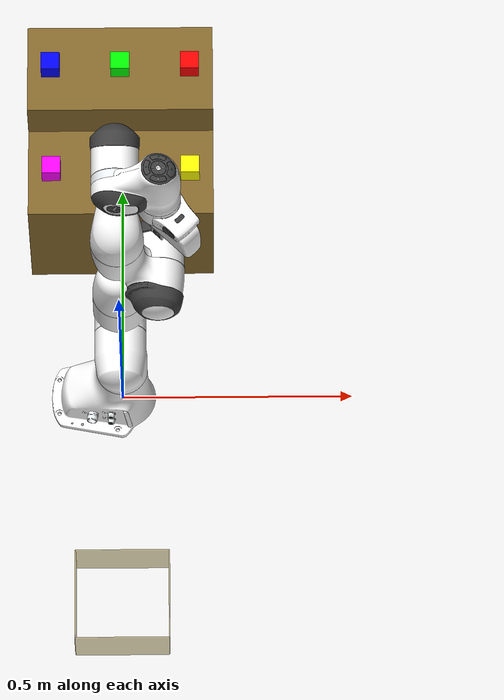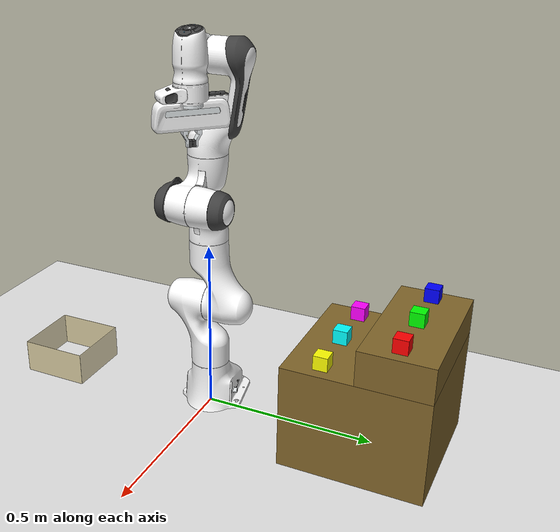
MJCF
<?xml version="1.0"?>
<mujoco model="panda scene">
    <include file="franka_emika_panda/panda.xml"/>

    <statistic center="0.3 0 0.4" extent="1.5"/>

    <option cone="elliptic" impratio="10" noslip_iterations="20" timestep="0.001" integrator="implicitfast">
        <flag multiccd="enable"/>
    </option>

    <visual>
        <headlight diffuse="0 0 0" ambient="1 1 1"/>
        <rgba fog="1.0 1.0 1.0 1.0"/>
        <global azimuth="120" elevation="-20"/>
    </visual>

    <default>
        <geom friction="0.8 0.1 0.1" solimp="0.95 0.99 0.0001" solref="0.005 1"/>
        <default class="cube">
            <geom size="0.02 0.02 0.02" type="box" mass="0.01"/>
        </default>
        <default class="wall">
            <geom type="box" material="wall"/>
        </default>
    </default>

    <asset>
        <material name="groundplane" rgba="0.9 0.9 0.9 1"/>
        <material name="shelf" rgba="0.51 0.4 0.17 1"/>
        <material name="wall" rgba="0.74 0.66 0.39 0.6"/>
    </asset>

    <worldbody>
        <light pos="0 0 3" diffuse="1 1 1" castshadow="false" directional="true" intensity="2"/>
        <light pos="2 -3 3" dir="-2 3 -3" diffuse="1 1 1" directional="false" intensity="30"/>
        <geom name="floor" size="5 5 0.1" type="plane" material="groundplane"/>

        <!-- The shelf -->
        <body name="shelf" pos="0.0 0.5 0.0">
            <body pos="0 0.0 0.15">
                <geom size="0.2 0.2 0.15" type="box" material="shelf"/>
            </body>
            <body pos="0 0.1 0.35">
                <geom size="0.2 0.1 0.05" type="box" material="shelf"/>
            </body>
        </body>

        <!-- A box to put the cubes in -->
        <body name="box" pos="0.0 -0.5 0.0">
            <body pos="0.1 0.0 0.05">
                <geom size="0.001 0.1 0.05" class="wall"/>
            </body>
            <body pos="-0.1 0.0 0.05">
                <geom size="0.001 0.1 0.05" class="wall"/>
            </body>
            <body pos="0.0 0.1 0.05">
                <geom size="0.1 0.001 0.05" class="wall"/>
            </body>
            <body pos="0.0 -0.1 0.05">
                <geom size="0.1 0.001 0.05" class="wall"/>
            </body>
        </body>

        <!-- The cubes that can be picked, placed on the shelf -->
        <body name="redcube" pos="0.15 0.6 0.42">
            <freejoint/>
            <geom class="cube" rgba="1 0 0 1"/>
        </body>

        <body name="greencube" pos="0 0.6 0.42">
            <freejoint/>
            <geom class="cube" rgba="0 1 0 1"/>
        </body>

        <body name="bluecube" pos="-0.15 0.6 0.42">
            <freejoint/>
            <geom class="cube" rgba="0 0 1 1"/>
        </body>

        <body name="yellowcube" pos="0.15 0.4 0.32">
            <freejoint/>
            <geom class="cube" rgba="1 1 0 1"/>
        </body>

        <body name="cyancube" pos="0 0.4 0.32">
            <freejoint/>
            <geom class="cube" rgba="0 1 1 1"/>
        </body>

        <body name="pinkcube" pos="-0.15 0.4 0.32">
            <freejoint/>
            <geom class="cube" rgba="1 0 1 1"/>
        </body>

    </worldbody>
</mujoco>

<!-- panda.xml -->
<mujoco model="panda">
  <compiler angle="radian" meshdir="franka_emika_panda/assets" autolimits="true"/>

  <option integrator="implicit"/>

  <default>
    <default class="panda">
      <material specular="0.5" shininess="0.25"/>
      <joint armature="0.1" damping="1" axis="0 0 1" range="-2.8973 2.8973"/>
      <general dyntype="none" biastype="affine" ctrlrange="-2.8973 2.8973" forcerange="-87 87"/>
      <default class="finger">
        <joint axis="0 1 0" type="slide" range="0 0.04"/>
      </default>

      <default class="visual">
        <geom type="mesh" contype="0" conaffinity="0" group="2"/>
      </default>
      <default class="collision">
        <geom type="mesh" group="3"/>
        <default class="fingertip_pad_collision_1">
          <geom type="box" size="0.0085 0.004 0.0085" pos="0 0.0055 0.0445" priority="1" friction="10 10 10" solimp="0.99 0.99 0.001" solref="0.004 1"/>
        </default>
        <default class="fingertip_pad_collision_2">
          <geom type="box" size="0.003 0.002 0.003" pos="0.0055 0.002 0.05" priority="1" friction="10 10 10" solimp="0.99 0.99 0.001" solref="0.004 1"/>
        </default>
        <default class="fingertip_pad_collision_3">
          <geom type="box" size="0.003 0.002 0.003" pos="-0.0055 0.002 0.05" priority="1" friction="10 10 10" solimp="0.99 0.99 0.001" solref="0.004 1"/>
        </default>
        <default class="fingertip_pad_collision_4">
          <geom type="box" size="0.003 0.002 0.0035" pos="0.0055 0.002 0.0395" priority="1" friction="10 10 10" solimp="0.99 0.99 0.001" solref="0.004 1"/>
        </default>
        <default class="fingertip_pad_collision_5">
          <geom type="box" size="0.003 0.002 0.0035" pos="-0.0055 0.002 0.0395" priority="1" friction="10 10 10" solimp="0.99 0.99 0.001" solref="0.004 1"/>
        </default>
      </default>
    </default>
  </default>

  <asset>
    <material class="panda" name="white" rgba="1 1 1 1"/>
    <material class="panda" name="off_white" rgba="0.901961 0.921569 0.929412 1"/>
    <material class="panda" name="black" rgba="0.25 0.25 0.25 1"/>
    <material class="panda" name="green" rgba="0 1 0 1"/>
    <material class="panda" name="light_blue" rgba="0.039216 0.541176 0.780392 1"/>

    <!-- Collision meshes -->
    <mesh name="link0_c" file="link0.stl"/>
    <mesh name="link1_c" file="link1.stl"/>
    <mesh name="link2_c" file="link2.stl"/>
    <mesh name="link3_c" file="link3.stl"/>
    <mesh name="link4_c" file="link4.stl"/>
    <mesh name="link5_c0" file="link5_collision_0.obj"/>
    <mesh name="link5_c1" file="link5_collision_1.obj"/>
    <mesh name="link5_c2" file="link5_collision_2.obj"/>
    <mesh name="link6_c" file="link6.stl"/>
    <mesh name="link7_c" file="link7.stl"/>
    <mesh name="hand_c" file="hand.stl"/>

    <!-- Visual meshes -->
    <mesh file="link0_0.obj"/>
    <mesh file="link0_1.obj"/>
    <mesh file="link0_2.obj"/>
    <mesh file="link0_3.obj"/>
    <mesh file="link0_4.obj"/>
    <mesh file="link0_5.obj"/>
    <mesh file="link0_7.obj"/>
    <mesh file="link0_8.obj"/>
    <mesh file="link0_9.obj"/>
    <mesh file="link0_10.obj"/>
    <mesh file="link0_11.obj"/>
    <mesh file="link1.obj"/>
    <mesh file="link2.obj"/>
    <mesh file="link3_0.obj"/>
    <mesh file="link3_1.obj"/>
    <mesh file="link3_2.obj"/>
    <mesh file="link3_3.obj"/>
    <mesh file="link4_0.obj"/>
    <mesh file="link4_1.obj"/>
    <mesh file="link4_2.obj"/>
    <mesh file="link4_3.obj"/>
    <mesh file="link5_0.obj"/>
    <mesh file="link5_1.obj"/>
    <mesh file="link5_2.obj"/>
    <mesh file="link6_0.obj"/>
    <mesh file="link6_1.obj"/>
    <mesh file="link6_2.obj"/>
    <mesh file="link6_3.obj"/>
    <mesh file="link6_4.obj"/>
    <mesh file="link6_5.obj"/>
    <mesh file="link6_6.obj"/>
    <mesh file="link6_7.obj"/>
    <mesh file="link6_8.obj"/>
    <mesh file="link6_9.obj"/>
    <mesh file="link6_10.obj"/>
    <mesh file="link6_11.obj"/>
    <mesh file="link6_12.obj"/>
    <mesh file="link6_13.obj"/>
    <mesh file="link6_14.obj"/>
    <mesh file="link6_15.obj"/>
    <mesh file="link6_16.obj"/>
    <mesh file="link7_0.obj"/>
    <mesh file="link7_1.obj"/>
    <mesh file="link7_2.obj"/>
    <mesh file="link7_3.obj"/>
    <mesh file="link7_4.obj"/>
    <mesh file="link7_5.obj"/>
    <mesh file="link7_6.obj"/>
    <mesh file="link7_7.obj"/>
    <mesh file="hand_0.obj"/>
    <mesh file="hand_1.obj"/>
    <mesh file="hand_2.obj"/>
    <mesh file="hand_3.obj"/>
    <mesh file="hand_4.obj"/>
    <mesh file="finger_0.obj"/>
    <mesh file="finger_1.obj"/>
  </asset>

  <worldbody>
    <body name="link0" childclass="panda" gravcomp="1">
      <inertial mass="0.629769" pos="-0.041018 -0.00014 0.049974"
          fullinertia="0.00315 0.00388 0.004285 8.2904e-7 0.00015 8.2299e-6"/>
      <geom mesh="link0_0" material="off_white" class="visual"/>
      <geom mesh="link0_1" material="black" class="visual"/>
      <geom mesh="link0_2" material="off_white" class="visual"/>
      <geom mesh="link0_3" material="black" class="visual"/>
      <geom mesh="link0_4" material="off_white" class="visual"/>
      <geom mesh="link0_5" material="black" class="visual"/>
      <geom mesh="link0_7" material="white" class="visual"/>
      <geom mesh="link0_8" material="white" class="visual"/>
      <geom mesh="link0_9" material="black" class="visual"/>
      <geom mesh="link0_10" material="off_white" class="visual"/>
      <geom mesh="link0_11" material="white" class="visual"/>
      <geom mesh="link0_c" class="collision"/>
      <body name="link1" pos="0 0 0.333" gravcomp="1">
        <inertial mass="4.970684" pos="0.003875 0.002081 -0.04762"
            fullinertia="0.70337 0.70661 0.0091170 -0.00013900 0.0067720 0.019169"/>
        <joint name="joint1"/>
        <geom material="white" mesh="link1" class="visual"/>
        <geom mesh="link1_c" class="collision"/>
        <body name="link2" quat="1 -1 0 0" gravcomp="1">
          <inertial mass="0.646926" pos="-0.003141 -0.02872 0.003495"
              fullinertia="0.0079620 2.8110e-2 2.5995e-2 -3.925e-3 1.0254e-2 7.04e-4"/>
          <joint name="joint2" range="-1.7628 1.7628"/>
          <geom material="white" mesh="link2" class="visual"/>
          <geom mesh="link2_c" class="collision"/>
          <body name="link3" pos="0 -0.316 0" quat="1 1 0 0" gravcomp="1">
            <joint name="joint3"/>
            <inertial mass="3.228604" pos="2.7518e-2 3.9252e-2 -6.6502e-2"
                fullinertia="3.7242e-2 3.6155e-2 1.083e-2 -4.761e-3 -1.1396e-2 -1.2805e-2"/>
            <geom mesh="link3_0" material="white" class="visual"/>
            <geom mesh="link3_1" material="white" class="visual"/>
            <geom mesh="link3_2" material="white" class="visual"/>
            <geom mesh="link3_3" material="black" class="visual"/>
            <geom mesh="link3_c" class="collision"/>
            <body name="link4" pos="0.0825 0 0" quat="1 1 0 0" gravcomp="1">
              <inertial mass="3.587895" pos="-5.317e-2 1.04419e-1 2.7454e-2"
                  fullinertia="2.5853e-2 1.9552e-2 2.8323e-2 7.796e-3 -1.332e-3 8.641e-3"/>
              <joint name="joint4" range="-3.0718 -0.0698"/>
              <geom mesh="link4_0" material="white" class="visual"/>
              <geom mesh="link4_1" material="white" class="visual"/>
              <geom mesh="link4_2" material="black" class="visual"/>
              <geom mesh="link4_3" material="white" class="visual"/>
              <geom mesh="link4_c" class="collision"/>
              <body name="link5" pos="-0.0825 0.384 0" quat="1 -1 0 0" gravcomp="1">
                <inertial mass="1.225946" pos="-1.1953e-2 4.1065e-2 -3.8437e-2"
                    fullinertia="3.5549e-2 2.9474e-2 8.627e-3 -2.117e-3 -4.037e-3 2.29e-4"/>
                <joint name="joint5"/>
                <geom mesh="link5_0" material="black" class="visual"/>
                <geom mesh="link5_1" material="white" class="visual"/>
                <geom mesh="link5_2" material="white" class="visual"/>
                <geom mesh="link5_c0" class="collision"/>
                <geom mesh="link5_c1" class="collision"/>
                <geom mesh="link5_c2" class="collision"/>
                <body name="link6" quat="1 1 0 0" gravcomp="1">
                  <inertial mass="1.666555" pos="6.0149e-2 -1.4117e-2 -1.0517e-2"
                      fullinertia="1.964e-3 4.354e-3 5.433e-3 1.09e-4 -1.158e-3 3.41e-4"/>
                  <joint name="joint6" range="-0.0175 3.7525"/>
                  <geom mesh="link6_0" material="off_white" class="visual"/>
                  <geom mesh="link6_1" material="white" class="visual"/>
                  <geom mesh="link6_2" material="black" class="visual"/>
                  <geom mesh="link6_3" material="white" class="visual"/>
                  <geom mesh="link6_4" material="white" class="visual"/>
                  <geom mesh="link6_5" material="white" class="visual"/>
                  <geom mesh="link6_6" material="white" class="visual"/>
                  <geom mesh="link6_7" material="light_blue" class="visual"/>
                  <geom mesh="link6_8" material="light_blue" class="visual"/>
                  <geom mesh="link6_9" material="black" class="visual"/>
                  <geom mesh="link6_10" material="black" class="visual"/>
                  <geom mesh="link6_11" material="white" class="visual"/>
                  <geom mesh="link6_12" material="green" class="visual"/>
                  <geom mesh="link6_13" material="white" class="visual"/>
                  <geom mesh="link6_14" material="black" class="visual"/>
                  <geom mesh="link6_15" material="black" class="visual"/>
                  <geom mesh="link6_16" material="white" class="visual"/>
                  <geom mesh="link6_c" class="collision"/>
                  <body name="link7" pos="0.088 0 0" quat="1 1 0 0" gravcomp="1">
                    <inertial mass="7.35522e-01" pos="1.0517e-2 -4.252e-3 6.1597e-2"
                        fullinertia="1.2516e-2 1.0027e-2 4.815e-3 -4.28e-4 -1.196e-3 -7.41e-4"/>
                    <joint name="joint7"/>
                    <geom mesh="link7_0" material="white" class="visual"/>
                    <geom mesh="link7_1" material="black" class="visual"/>
                    <geom mesh="link7_2" material="black" class="visual"/>
                    <geom mesh="link7_3" material="black" class="visual"/>
                    <geom mesh="link7_4" material="black" class="visual"/>
                    <geom mesh="link7_5" material="black" class="visual"/>
                    <geom mesh="link7_6" material="black" class="visual"/>
                    <geom mesh="link7_7" material="white" class="visual"/>
                    <geom mesh="link7_c" class="collision"/>
                    <body name="hand" pos="0 0 0.107" quat="0.9238795 0 0 -0.3826834" gravcomp="1">
                      <inertial mass="0.73" pos="-0.01 0 0.03" diaginertia="0.001 0.0025 0.0017"/>
                      <geom mesh="hand_0" material="off_white" class="visual"/>
                      <geom mesh="hand_1" material="black" class="visual"/>
                      <geom mesh="hand_2" material="black" class="visual"/>
                      <geom mesh="hand_3" material="white" class="visual"/>
                      <geom mesh="hand_4" material="off_white" class="visual"/>
                      <geom mesh="hand_c" class="collision"/>
                      <body name="left_finger" pos="0 0 0.0584">
                        <inertial mass="0.015" pos="0 0 0" diaginertia="2.375e-6 2.375e-6 7.5e-7"/>
                        <joint name="finger_joint1" class="finger"/>
                        <geom mesh="finger_0" material="off_white" class="visual"/>
                        <geom mesh="finger_1" material="black" class="visual"/>
                        <geom mesh="finger_0" class="collision"/>
                        <geom class="fingertip_pad_collision_1"/>
                        <geom class="fingertip_pad_collision_2"/>
                        <geom class="fingertip_pad_collision_3"/>
                        <geom class="fingertip_pad_collision_4"/>
                        <geom class="fingertip_pad_collision_5"/>
                      </body>
                      <body name="right_finger" pos="0 0 0.0584" quat="0 0 0 1">
                        <inertial mass="0.015" pos="0 0 0" diaginertia="2.375e-6 2.375e-6 7.5e-7"/>
                        <joint name="finger_joint2" class="finger"/>
                        <geom mesh="finger_0" material="off_white" class="visual"/>
                        <geom mesh="finger_1" material="black" class="visual"/>
                        <geom mesh="finger_0" class="collision"/>
                        <geom class="fingertip_pad_collision_1"/>
                        <geom class="fingertip_pad_collision_2"/>
                        <geom class="fingertip_pad_collision_3"/>
                        <geom class="fingertip_pad_collision_4"/>
                        <geom class="fingertip_pad_collision_5"/>
                      </body>
                      <site name="tcp" pos="0 0 0.103394"/>
                    </body>
                  </body>
                </body>
              </body>
            </body>
          </body>
        </body>
      </body>
    </body>
  </worldbody>

  <tendon>
    <fixed name="split">
      <joint joint="finger_joint1" coef="0.5"/>
      <joint joint="finger_joint2" coef="0.5"/>
    </fixed>
  </tendon>

  <equality>
    <joint joint1="finger_joint1" joint2="finger_joint2" solimp="0.95 0.99 0.001" solref="0.005 1"/>
  </equality>

  <actuator>
    <general class="panda" name="actuator1" joint="joint1" gainprm="4500" biasprm="0 -4500 -450"/>
    <general class="panda" name="actuator2" joint="joint2" gainprm="4500" biasprm="0 -4500 -450"
        ctrlrange="-1.7628 1.7628"/>
    <general class="panda" name="actuator3" joint="joint3" gainprm="3500" biasprm="0 -3500 -350"/>
    <general class="panda" name="actuator4" joint="joint4" gainprm="3500" biasprm="0 -3500 -350"
        ctrlrange="-3.0718 -0.0698"/>
    <general class="panda" name="actuator5" joint="joint5" gainprm="2000" biasprm="0 -2000 -200"
        forcerange="-12 12"/>
    <general class="panda" name="actuator6" joint="joint6" gainprm="2000" biasprm="0 -2000 -200"
        forcerange="-12 12" ctrlrange="-0.0175 3.7525"/>
    <general class="panda" name="actuator7" joint="joint7" gainprm="2000" biasprm="0 -2000 -200"
        forcerange="-12 12"/>
    <!-- Remap original ctrlrange (0, 0.04) to (0, 255): 0.04 * 100 / 255 = 0.01568627451 -->
    <general class="panda" name="actuator8" tendon="split" forcerange="-100 100" ctrlrange="0 255"
        gainprm="0.01568627451 0 0" biasprm="0 -100 -10"/>
  </actuator>

</mujoco>
